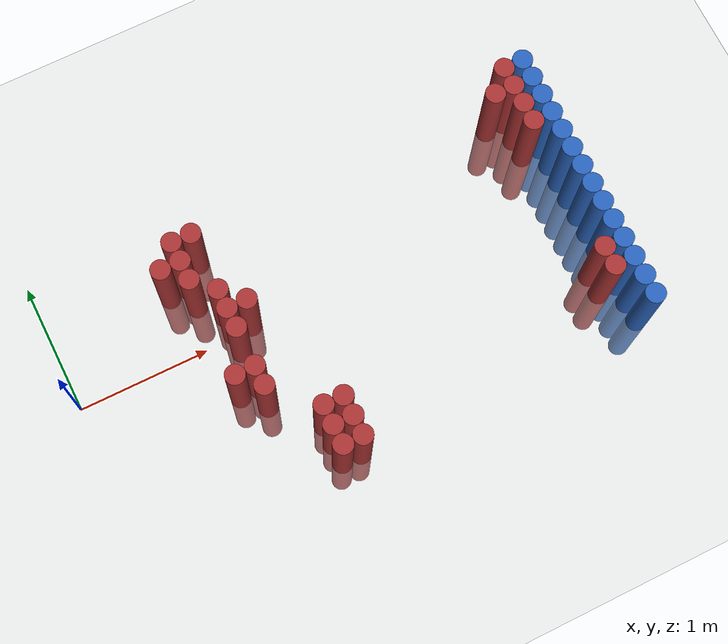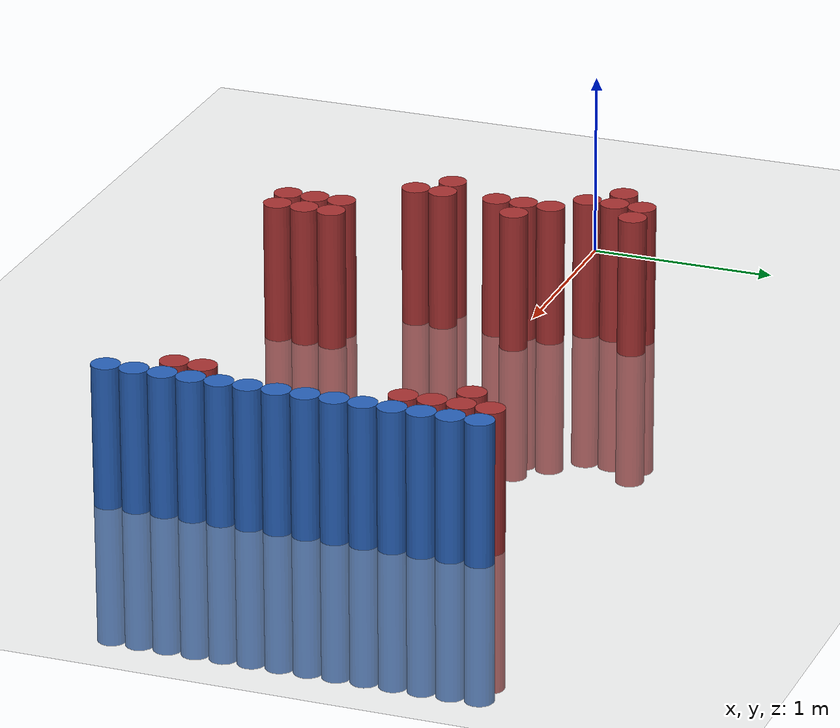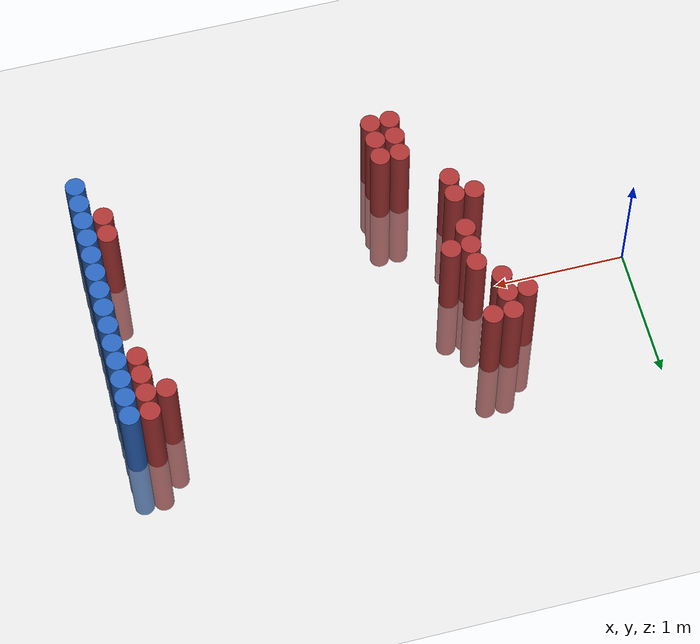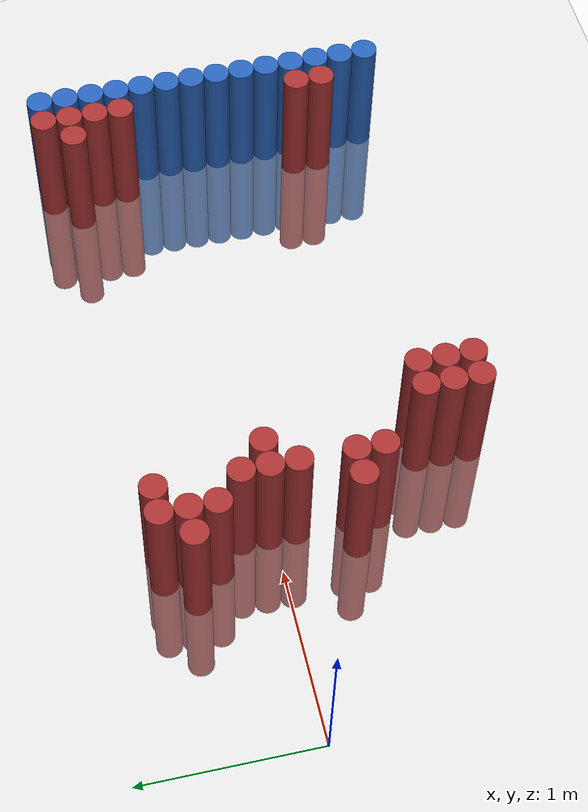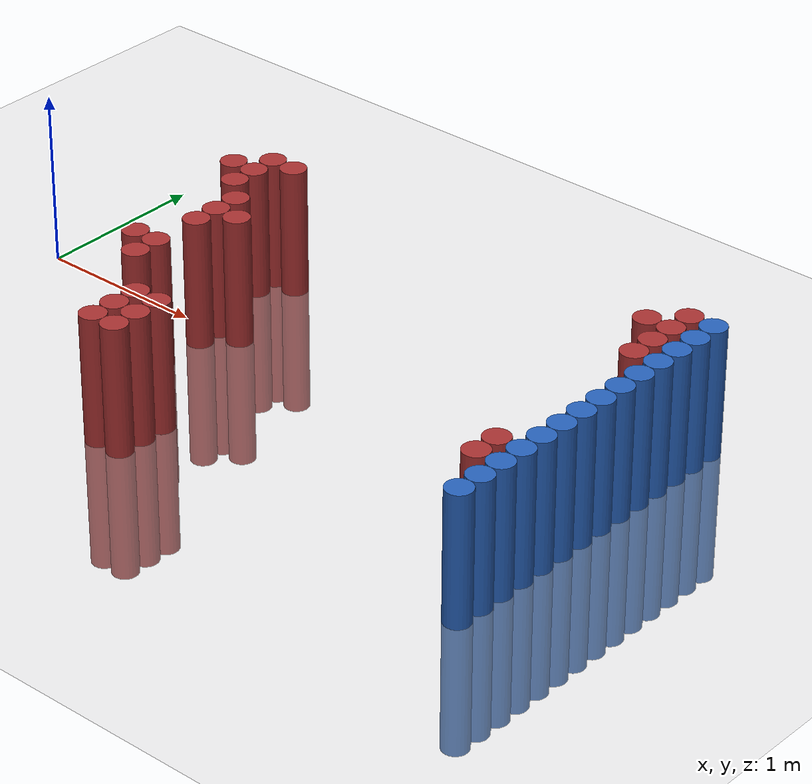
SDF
<sdf version="1.6">
 <world name="default">
  <model name="ground_plane">
   <static>1</static>
   <link name="link">
    <collision name="collision">
     <geometry><plane><normal>0 0 1</normal><size>100 100</size></plane></geometry>
     <surface><friction><ode><mu>100</mu><mu2>50</mu2></ode></friction></surface>
    </collision>
    <visual name="visual">
     <cast_shadows>0</cast_shadows>
     <geometry><plane><normal>0 0 1</normal><size>100 100</size></plane></geometry>
     <material>
      <script><uri>file://media/materials/scripts/gazebo.material</uri><name>Gazebo/Grey</name></script>
     </material>
    </visual>
   </link>
  </model>
  <model name="unit_cylinder_98">
   <static>1</static>
   <pose>3.925000 -1.175000 0.000000 0.000000 0.000000 0.000000</pose>
   <link name="link">
    <inertial>
     <mass>1</mass>
     <inertia><ixx>0.145833</ixx><ixy>0</ixy><ixz>0</ixz><iyy>0.145833</iyy><iyz>0</iyz><izz>0.125</izz></inertia>
    </inertial>
    <collision name="collision">
     <geometry><cylinder><radius>0.075000</radius><length>1.5</length></cylinder></geometry>
    </collision>
    <visual name="visual">
     <geometry><cylinder><radius>0.075000</radius><length>1.5</length></cylinder></geometry>
     <material>
      <ambient>0.152000 0.379000 0.720000 1</ambient>
      <diffuse>0.152000 0.379000 0.720000 1</diffuse>
     </material>
     <material>
      <script><name>Gazebo/Grey</name><uri>file://media/materials/scripts/gazebo.material</uri></script>
     </material>
    </visual>
   </link>
  </model>
  <model name="unit_cylinder_100">
   <static>1</static>
   <pose>3.925000 -1.025000 0.000000 0.000000 0.000000 0.000000</pose>
   <link name="link">
    <inertial>
     <mass>1</mass>
     <inertia><ixx>0.145833</ixx><ixy>0</ixy><ixz>0</ixz><iyy>0.145833</iyy><iyz>0</iyz><izz>0.125</izz></inertia>
    </inertial>
    <collision name="collision">
     <geometry><cylinder><radius>0.075000</radius><length>1.5</length></cylinder></geometry>
    </collision>
    <visual name="visual">
     <geometry><cylinder><radius>0.075000</radius><length>1.5</length></cylinder></geometry>
     <material>
      <ambient>0.152000 0.379000 0.720000 1</ambient>
      <diffuse>0.152000 0.379000 0.720000 1</diffuse>
     </material>
     <material>
      <script><name>Gazebo/Grey</name><uri>file://media/materials/scripts/gazebo.material</uri></script>
     </material>
    </visual>
   </link>
  </model>
  <model name="unit_cylinder_102">
   <static>1</static>
   <pose>3.925000 -0.875000 0.000000 0.000000 0.000000 0.000000</pose>
   <link name="link">
    <inertial>
     <mass>1</mass>
     <inertia><ixx>0.145833</ixx><ixy>0</ixy><ixz>0</ixz><iyy>0.145833</iyy><iyz>0</iyz><izz>0.125</izz></inertia>
    </inertial>
    <collision name="collision">
     <geometry><cylinder><radius>0.075000</radius><length>1.5</length></cylinder></geometry>
    </collision>
    <visual name="visual">
     <geometry><cylinder><radius>0.075000</radius><length>1.5</length></cylinder></geometry>
     <material>
      <ambient>0.152000 0.379000 0.720000 1</ambient>
      <diffuse>0.152000 0.379000 0.720000 1</diffuse>
     </material>
     <material>
      <script><name>Gazebo/Grey</name><uri>file://media/materials/scripts/gazebo.material</uri></script>
     </material>
    </visual>
   </link>
  </model>
  <model name="unit_cylinder_104">
   <static>1</static>
   <pose>3.925000 -0.725000 0.000000 0.000000 0.000000 0.000000</pose>
   <link name="link">
    <inertial>
     <mass>1</mass>
     <inertia><ixx>0.145833</ixx><ixy>0</ixy><ixz>0</ixz><iyy>0.145833</iyy><iyz>0</iyz><izz>0.125</izz></inertia>
    </inertial>
    <collision name="collision">
     <geometry><cylinder><radius>0.075000</radius><length>1.5</length></cylinder></geometry>
    </collision>
    <visual name="visual">
     <geometry><cylinder><radius>0.075000</radius><length>1.5</length></cylinder></geometry>
     <material>
      <ambient>0.152000 0.379000 0.720000 1</ambient>
      <diffuse>0.152000 0.379000 0.720000 1</diffuse>
     </material>
     <material>
      <script><name>Gazebo/Grey</name><uri>file://media/materials/scripts/gazebo.material</uri></script>
     </material>
    </visual>
   </link>
  </model>
  <model name="unit_cylinder_106">
   <static>1</static>
   <pose>3.925000 -0.575000 0.000000 0.000000 0.000000 0.000000</pose>
   <link name="link">
    <inertial>
     <mass>1</mass>
     <inertia><ixx>0.145833</ixx><ixy>0</ixy><ixz>0</ixz><iyy>0.145833</iyy><iyz>0</iyz><izz>0.125</izz></inertia>
    </inertial>
    <collision name="collision">
     <geometry><cylinder><radius>0.075000</radius><length>1.5</length></cylinder></geometry>
    </collision>
    <visual name="visual">
     <geometry><cylinder><radius>0.075000</radius><length>1.5</length></cylinder></geometry>
     <material>
      <ambient>0.152000 0.379000 0.720000 1</ambient>
      <diffuse>0.152000 0.379000 0.720000 1</diffuse>
     </material>
     <material>
      <script><name>Gazebo/Grey</name><uri>file://media/materials/scripts/gazebo.material</uri></script>
     </material>
    </visual>
   </link>
  </model>
  <model name="unit_cylinder_108">
   <static>1</static>
   <pose>3.925000 -0.425000 0.000000 0.000000 0.000000 0.000000</pose>
   <link name="link">
    <inertial>
     <mass>1</mass>
     <inertia><ixx>0.145833</ixx><ixy>0</ixy><ixz>0</ixz><iyy>0.145833</iyy><iyz>0</iyz><izz>0.125</izz></inertia>
    </inertial>
    <collision name="collision">
     <geometry><cylinder><radius>0.075000</radius><length>1.5</length></cylinder></geometry>
    </collision>
    <visual name="visual">
     <geometry><cylinder><radius>0.075000</radius><length>1.5</length></cylinder></geometry>
     <material>
      <ambient>0.152000 0.379000 0.720000 1</ambient>
      <diffuse>0.152000 0.379000 0.720000 1</diffuse>
     </material>
     <material>
      <script><name>Gazebo/Grey</name><uri>file://media/materials/scripts/gazebo.material</uri></script>
     </material>
    </visual>
   </link>
  </model>
  <model name="unit_cylinder_110">
   <static>1</static>
   <pose>3.925000 -0.275000 0.000000 0.000000 0.000000 0.000000</pose>
   <link name="link">
    <inertial>
     <mass>1</mass>
     <inertia><ixx>0.145833</ixx><ixy>0</ixy><ixz>0</ixz><iyy>0.145833</iyy><iyz>0</iyz><izz>0.125</izz></inertia>
    </inertial>
    <collision name="collision">
     <geometry><cylinder><radius>0.075000</radius><length>1.5</length></cylinder></geometry>
    </collision>
    <visual name="visual">
     <geometry><cylinder><radius>0.075000</radius><length>1.5</length></cylinder></geometry>
     <material>
      <ambient>0.152000 0.379000 0.720000 1</ambient>
      <diffuse>0.152000 0.379000 0.720000 1</diffuse>
     </material>
     <material>
      <script><name>Gazebo/Grey</name><uri>file://media/materials/scripts/gazebo.material</uri></script>
     </material>
    </visual>
   </link>
  </model>
  <model name="unit_cylinder_112">
   <static>1</static>
   <pose>3.925000 -0.125000 0.000000 0.000000 0.000000 0.000000</pose>
   <link name="link">
    <inertial>
     <mass>1</mass>
     <inertia><ixx>0.145833</ixx><ixy>0</ixy><ixz>0</ixz><iyy>0.145833</iyy><iyz>0</iyz><izz>0.125</izz></inertia>
    </inertial>
    <collision name="collision">
     <geometry><cylinder><radius>0.075000</radius><length>1.5</length></cylinder></geometry>
    </collision>
    <visual name="visual">
     <geometry><cylinder><radius>0.075000</radius><length>1.5</length></cylinder></geometry>
     <material>
      <ambient>0.152000 0.379000 0.720000 1</ambient>
      <diffuse>0.152000 0.379000 0.720000 1</diffuse>
     </material>
     <material>
      <script><name>Gazebo/Grey</name><uri>file://media/materials/scripts/gazebo.material</uri></script>
     </material>
    </visual>
   </link>
  </model>
  <model name="unit_cylinder_114">
   <static>1</static>
   <pose>3.925000 0.025000 0.000000 0.000000 0.000000 0.000000</pose>
   <link name="link">
    <inertial>
     <mass>1</mass>
     <inertia><ixx>0.145833</ixx><ixy>0</ixy><ixz>0</ixz><iyy>0.145833</iyy><iyz>0</iyz><izz>0.125</izz></inertia>
    </inertial>
    <collision name="collision">
     <geometry><cylinder><radius>0.075000</radius><length>1.5</length></cylinder></geometry>
    </collision>
    <visual name="visual">
     <geometry><cylinder><radius>0.075000</radius><length>1.5</length></cylinder></geometry>
     <material>
      <ambient>0.152000 0.379000 0.720000 1</ambient>
      <diffuse>0.152000 0.379000 0.720000 1</diffuse>
     </material>
     <material>
      <script><name>Gazebo/Grey</name><uri>file://media/materials/scripts/gazebo.material</uri></script>
     </material>
    </visual>
   </link>
  </model>
  <model name="unit_cylinder_116">
   <static>1</static>
   <pose>3.925000 0.175000 0.000000 0.000000 0.000000 0.000000</pose>
   <link name="link">
    <inertial>
     <mass>1</mass>
     <inertia><ixx>0.145833</ixx><ixy>0</ixy><ixz>0</ixz><iyy>0.145833</iyy><iyz>0</iyz><izz>0.125</izz></inertia>
    </inertial>
    <collision name="collision">
     <geometry><cylinder><radius>0.075000</radius><length>1.5</length></cylinder></geometry>
    </collision>
    <visual name="visual">
     <geometry><cylinder><radius>0.075000</radius><length>1.5</length></cylinder></geometry>
     <material>
      <ambient>0.152000 0.379000 0.720000 1</ambient>
      <diffuse>0.152000 0.379000 0.720000 1</diffuse>
     </material>
     <material>
      <script><name>Gazebo/Grey</name><uri>file://media/materials/scripts/gazebo.material</uri></script>
     </material>
    </visual>
   </link>
  </model>
  <model name="unit_cylinder_118">
   <static>1</static>
   <pose>3.925000 0.325000 0.000000 0.000000 0.000000 0.000000</pose>
   <link name="link">
    <inertial>
     <mass>1</mass>
     <inertia><ixx>0.145833</ixx><ixy>0</ixy><ixz>0</ixz><iyy>0.145833</iyy><iyz>0</iyz><izz>0.125</izz></inertia>
    </inertial>
    <collision name="collision">
     <geometry><cylinder><radius>0.075000</radius><length>1.5</length></cylinder></geometry>
    </collision>
    <visual name="visual">
     <geometry><cylinder><radius>0.075000</radius><length>1.5</length></cylinder></geometry>
     <material>
      <ambient>0.152000 0.379000 0.720000 1</ambient>
      <diffuse>0.152000 0.379000 0.720000 1</diffuse>
     </material>
     <material>
      <script><name>Gazebo/Grey</name><uri>file://media/materials/scripts/gazebo.material</uri></script>
     </material>
    </visual>
   </link>
  </model>
  <model name="unit_cylinder_120">
   <static>1</static>
   <pose>3.925000 0.475000 0.000000 0.000000 0.000000 0.000000</pose>
   <link name="link">
    <inertial>
     <mass>1</mass>
     <inertia><ixx>0.145833</ixx><ixy>0</ixy><ixz>0</ixz><iyy>0.145833</iyy><iyz>0</iyz><izz>0.125</izz></inertia>
    </inertial>
    <collision name="collision">
     <geometry><cylinder><radius>0.075000</radius><length>1.5</length></cylinder></geometry>
    </collision>
    <visual name="visual">
     <geometry><cylinder><radius>0.075000</radius><length>1.5</length></cylinder></geometry>
     <material>
      <ambient>0.152000 0.379000 0.720000 1</ambient>
      <diffuse>0.152000 0.379000 0.720000 1</diffuse>
     </material>
     <material>
      <script><name>Gazebo/Grey</name><uri>file://media/materials/scripts/gazebo.material</uri></script>
     </material>
    </visual>
   </link>
  </model>
  <model name="unit_cylinder_122">
   <static>1</static>
   <pose>3.925000 0.625000 0.000000 0.000000 0.000000 0.000000</pose>
   <link name="link">
    <inertial>
     <mass>1</mass>
     <inertia><ixx>0.145833</ixx><ixy>0</ixy><ixz>0</ixz><iyy>0.145833</iyy><iyz>0</iyz><izz>0.125</izz></inertia>
    </inertial>
    <collision name="collision">
     <geometry><cylinder><radius>0.075000</radius><length>1.5</length></cylinder></geometry>
    </collision>
    <visual name="visual">
     <geometry><cylinder><radius>0.075000</radius><length>1.5</length></cylinder></geometry>
     <material>
      <ambient>0.152000 0.379000 0.720000 1</ambient>
      <diffuse>0.152000 0.379000 0.720000 1</diffuse>
     </material>
     <material>
      <script><name>Gazebo/Grey</name><uri>file://media/materials/scripts/gazebo.material</uri></script>
     </material>
    </visual>
   </link>
  </model>
  <model name="unit_cylinder_124">
   <static>1</static>
   <pose>3.925000 0.775000 0.000000 0.000000 0.000000 0.000000</pose>
   <link name="link">
    <inertial>
     <mass>1</mass>
     <inertia><ixx>0.145833</ixx><ixy>0</ixy><ixz>0</ixz><iyy>0.145833</iyy><iyz>0</iyz><izz>0.125</izz></inertia>
    </inertial>
    <collision name="collision">
     <geometry><cylinder><radius>0.075000</radius><length>1.5</length></cylinder></geometry>
    </collision>
    <visual name="visual">
     <geometry><cylinder><radius>0.075000</radius><length>1.5</length></cylinder></geometry>
     <material>
      <ambient>0.152000 0.379000 0.720000 1</ambient>
      <diffuse>0.152000 0.379000 0.720000 1</diffuse>
     </material>
     <material>
      <script><name>Gazebo/Grey</name><uri>file://media/materials/scripts/gazebo.material</uri></script>
     </material>
    </visual>
   </link>
  </model>
  <model name="unit_cylinder_297">
   <static>1</static>
   <pose>0.925000 0.475000 0.000000 0.000000 0.000000 0.000000</pose>
   <link name="link">
    <inertial>
     <mass>1</mass>
     <inertia><ixx>0.145833</ixx><ixy>0</ixy><ixz>0</ixz><iyy>0.145833</iyy><iyz>0</iyz><izz>0.125</izz></inertia>
    </inertial>
    <collision name="collision">
     <geometry><cylinder><radius>0.075000</radius><length>1.5</length></cylinder></geometry>
    </collision>
    <visual name="visual">
     <geometry><cylinder><radius>0.075000</radius><length>1.5</length></cylinder></geometry>
     <material>
      <ambient>0.648000 0.192000 0.192000 1</ambient>
      <diffuse>0.648000 0.192000 0.192000 1</diffuse>
     </material>
     <material>
      <script><name>Gazebo/Grey</name><uri>file://media/materials/scripts/gazebo.material</uri></script>
     </material>
    </visual>
   </link>
  </model>
  <model name="unit_cylinder_298">
   <static>1</static>
   <pose>1.075000 -0.425000 0.000000 0.000000 0.000000 0.000000</pose>
   <link name="link">
    <inertial>
     <mass>1</mass>
     <inertia><ixx>0.145833</ixx><ixy>0</ixy><ixz>0</ixz><iyy>0.145833</iyy><iyz>0</iyz><izz>0.125</izz></inertia>
    </inertial>
    <collision name="collision">
     <geometry><cylinder><radius>0.075000</radius><length>1.5</length></cylinder></geometry>
    </collision>
    <visual name="visual">
     <geometry><cylinder><radius>0.075000</radius><length>1.5</length></cylinder></geometry>
     <material>
      <ambient>0.648000 0.192000 0.192000 1</ambient>
      <diffuse>0.648000 0.192000 0.192000 1</diffuse>
     </material>
     <material>
      <script><name>Gazebo/Grey</name><uri>file://media/materials/scripts/gazebo.material</uri></script>
     </material>
    </visual>
   </link>
  </model>
  <model name="unit_cylinder_299">
   <static>1</static>
   <pose>1.075000 0.325000 0.000000 0.000000 0.000000 0.000000</pose>
   <link name="link">
    <inertial>
     <mass>1</mass>
     <inertia><ixx>0.145833</ixx><ixy>0</ixy><ixz>0</ixz><iyy>0.145833</iyy><iyz>0</iyz><izz>0.125</izz></inertia>
    </inertial>
    <collision name="collision">
     <geometry><cylinder><radius>0.075000</radius><length>1.5</length></cylinder></geometry>
    </collision>
    <visual name="visual">
     <geometry><cylinder><radius>0.075000</radius><length>1.5</length></cylinder></geometry>
     <material>
      <ambient>0.648000 0.192000 0.192000 1</ambient>
      <diffuse>0.648000 0.192000 0.192000 1</diffuse>
     </material>
     <material>
      <script><name>Gazebo/Grey</name><uri>file://media/materials/scripts/gazebo.material</uri></script>
     </material>
    </visual>
   </link>
  </model>
  <model name="unit_cylinder_300">
   <static>1</static>
   <pose>1.075000 0.475000 0.000000 0.000000 0.000000 0.000000</pose>
   <link name="link">
    <inertial>
     <mass>1</mass>
     <inertia><ixx>0.145833</ixx><ixy>0</ixy><ixz>0</ixz><iyy>0.145833</iyy><iyz>0</iyz><izz>0.125</izz></inertia>
    </inertial>
    <collision name="collision">
     <geometry><cylinder><radius>0.075000</radius><length>1.5</length></cylinder></geometry>
    </collision>
    <visual name="visual">
     <geometry><cylinder><radius>0.075000</radius><length>1.5</length></cylinder></geometry>
     <material>
      <ambient>0.648000 0.192000 0.192000 1</ambient>
      <diffuse>0.648000 0.192000 0.192000 1</diffuse>
     </material>
     <material>
      <script><name>Gazebo/Grey</name><uri>file://media/materials/scripts/gazebo.material</uri></script>
     </material>
    </visual>
   </link>
  </model>
  <model name="unit_cylinder_301">
   <static>1</static>
   <pose>1.075000 0.625000 0.000000 0.000000 0.000000 0.000000</pose>
   <link name="link">
    <inertial>
     <mass>1</mass>
     <inertia><ixx>0.145833</ixx><ixy>0</ixy><ixz>0</ixz><iyy>0.145833</iyy><iyz>0</iyz><izz>0.125</izz></inertia>
    </inertial>
    <collision name="collision">
     <geometry><cylinder><radius>0.075000</radius><length>1.5</length></cylinder></geometry>
    </collision>
    <visual name="visual">
     <geometry><cylinder><radius>0.075000</radius><length>1.5</length></cylinder></geometry>
     <material>
      <ambient>0.648000 0.192000 0.192000 1</ambient>
      <diffuse>0.648000 0.192000 0.192000 1</diffuse>
     </material>
     <material>
      <script><name>Gazebo/Grey</name><uri>file://media/materials/scripts/gazebo.material</uri></script>
     </material>
    </visual>
   </link>
  </model>
  <model name="unit_cylinder_302">
   <static>1</static>
   <pose>1.225000 -0.575000 0.000000 0.000000 0.000000 0.000000</pose>
   <link name="link">
    <inertial>
     <mass>1</mass>
     <inertia><ixx>0.145833</ixx><ixy>0</ixy><ixz>0</ixz><iyy>0.145833</iyy><iyz>0</iyz><izz>0.125</izz></inertia>
    </inertial>
    <collision name="collision">
     <geometry><cylinder><radius>0.075000</radius><length>1.5</length></cylinder></geometry>
    </collision>
    <visual name="visual">
     <geometry><cylinder><radius>0.075000</radius><length>1.5</length></cylinder></geometry>
     <material>
      <ambient>0.648000 0.192000 0.192000 1</ambient>
      <diffuse>0.648000 0.192000 0.192000 1</diffuse>
     </material>
     <material>
      <script><name>Gazebo/Grey</name><uri>file://media/materials/scripts/gazebo.material</uri></script>
     </material>
    </visual>
   </link>
  </model>
  <model name="unit_cylinder_303">
   <static>1</static>
   <pose>1.225000 -0.425000 0.000000 0.000000 0.000000 0.000000</pose>
   <link name="link">
    <inertial>
     <mass>1</mass>
     <inertia><ixx>0.145833</ixx><ixy>0</ixy><ixz>0</ixz><iyy>0.145833</iyy><iyz>0</iyz><izz>0.125</izz></inertia>
    </inertial>
    <collision name="collision">
     <geometry><cylinder><radius>0.075000</radius><length>1.5</length></cylinder></geometry>
    </collision>
    <visual name="visual">
     <geometry><cylinder><radius>0.075000</radius><length>1.5</length></cylinder></geometry>
     <material>
      <ambient>0.648000 0.192000 0.192000 1</ambient>
      <diffuse>0.648000 0.192000 0.192000 1</diffuse>
     </material>
     <material>
      <script><name>Gazebo/Grey</name><uri>file://media/materials/scripts/gazebo.material</uri></script>
     </material>
    </visual>
   </link>
  </model>
  <model name="unit_cylinder_304">
   <static>1</static>
   <pose>1.225000 -0.125000 0.000000 0.000000 0.000000 0.000000</pose>
   <link name="link">
    <inertial>
     <mass>1</mass>
     <inertia><ixx>0.145833</ixx><ixy>0</ixy><ixz>0</ixz><iyy>0.145833</iyy><iyz>0</iyz><izz>0.125</izz></inertia>
    </inertial>
    <collision name="collision">
     <geometry><cylinder><radius>0.075000</radius><length>1.5</length></cylinder></geometry>
    </collision>
    <visual name="visual">
     <geometry><cylinder><radius>0.075000</radius><length>1.5</length></cylinder></geometry>
     <material>
      <ambient>0.648000 0.192000 0.192000 1</ambient>
      <diffuse>0.648000 0.192000 0.192000 1</diffuse>
     </material>
     <material>
      <script><name>Gazebo/Grey</name><uri>file://media/materials/scripts/gazebo.material</uri></script>
     </material>
    </visual>
   </link>
  </model>
  <model name="unit_cylinder_305">
   <static>1</static>
   <pose>1.225000 0.025000 0.000000 0.000000 0.000000 0.000000</pose>
   <link name="link">
    <inertial>
     <mass>1</mass>
     <inertia><ixx>0.145833</ixx><ixy>0</ixy><ixz>0</ixz><iyy>0.145833</iyy><iyz>0</iyz><izz>0.125</izz></inertia>
    </inertial>
    <collision name="collision">
     <geometry><cylinder><radius>0.075000</radius><length>1.5</length></cylinder></geometry>
    </collision>
    <visual name="visual">
     <geometry><cylinder><radius>0.075000</radius><length>1.5</length></cylinder></geometry>
     <material>
      <ambient>0.648000 0.192000 0.192000 1</ambient>
      <diffuse>0.648000 0.192000 0.192000 1</diffuse>
     </material>
     <material>
      <script><name>Gazebo/Grey</name><uri>file://media/materials/scripts/gazebo.material</uri></script>
     </material>
    </visual>
   </link>
  </model>
  <model name="unit_cylinder_306">
   <static>1</static>
   <pose>1.225000 0.175000 0.000000 0.000000 0.000000 0.000000</pose>
   <link name="link">
    <inertial>
     <mass>1</mass>
     <inertia><ixx>0.145833</ixx><ixy>0</ixy><ixz>0</ixz><iyy>0.145833</iyy><iyz>0</iyz><izz>0.125</izz></inertia>
    </inertial>
    <collision name="collision">
     <geometry><cylinder><radius>0.075000</radius><length>1.5</length></cylinder></geometry>
    </collision>
    <visual name="visual">
     <geometry><cylinder><radius>0.075000</radius><length>1.5</length></cylinder></geometry>
     <material>
      <ambient>0.648000 0.192000 0.192000 1</ambient>
      <diffuse>0.648000 0.192000 0.192000 1</diffuse>
     </material>
     <material>
      <script><name>Gazebo/Grey</name><uri>file://media/materials/scripts/gazebo.material</uri></script>
     </material>
    </visual>
   </link>
  </model>
  <model name="unit_cylinder_307">
   <static>1</static>
   <pose>1.225000 0.625000 0.000000 0.000000 0.000000 0.000000</pose>
   <link name="link">
    <inertial>
     <mass>1</mass>
     <inertia><ixx>0.145833</ixx><ixy>0</ixy><ixz>0</ixz><iyy>0.145833</iyy><iyz>0</iyz><izz>0.125</izz></inertia>
    </inertial>
    <collision name="collision">
     <geometry><cylinder><radius>0.075000</radius><length>1.5</length></cylinder></geometry>
    </collision>
    <visual name="visual">
     <geometry><cylinder><radius>0.075000</radius><length>1.5</length></cylinder></geometry>
     <material>
      <ambient>0.648000 0.192000 0.192000 1</ambient>
      <diffuse>0.648000 0.192000 0.192000 1</diffuse>
     </material>
     <material>
      <script><name>Gazebo/Grey</name><uri>file://media/materials/scripts/gazebo.material</uri></script>
     </material>
    </visual>
   </link>
  </model>
  <model name="unit_cylinder_309">
   <static>1</static>
   <pose>1.375000 0.025000 0.000000 0.000000 0.000000 0.000000</pose>
   <link name="link">
    <inertial>
     <mass>1</mass>
     <inertia><ixx>0.145833</ixx><ixy>0</ixy><ixz>0</ixz><iyy>0.145833</iyy><iyz>0</iyz><izz>0.125</izz></inertia>
    </inertial>
    <collision name="collision">
     <geometry><cylinder><radius>0.075000</radius><length>1.5</length></cylinder></geometry>
    </collision>
    <visual name="visual">
     <geometry><cylinder><radius>0.075000</radius><length>1.5</length></cylinder></geometry>
     <material>
      <ambient>0.648000 0.192000 0.192000 1</ambient>
      <diffuse>0.648000 0.192000 0.192000 1</diffuse>
     </material>
     <material>
      <script><name>Gazebo/Grey</name><uri>file://media/materials/scripts/gazebo.material</uri></script>
     </material>
    </visual>
   </link>
  </model>
  <model name="unit_cylinder_310">
   <static>1</static>
   <pose>1.525000 -1.175000 0.000000 0.000000 0.000000 0.000000</pose>
   <link name="link">
    <inertial>
     <mass>1</mass>
     <inertia><ixx>0.145833</ixx><ixy>0</ixy><ixz>0</ixz><iyy>0.145833</iyy><iyz>0</iyz><izz>0.125</izz></inertia>
    </inertial>
    <collision name="collision">
     <geometry><cylinder><radius>0.075000</radius><length>1.5</length></cylinder></geometry>
    </collision>
    <visual name="visual">
     <geometry><cylinder><radius>0.075000</radius><length>1.5</length></cylinder></geometry>
     <material>
      <ambient>0.648000 0.192000 0.192000 1</ambient>
      <diffuse>0.648000 0.192000 0.192000 1</diffuse>
     </material>
     <material>
      <script><name>Gazebo/Grey</name><uri>file://media/materials/scripts/gazebo.material</uri></script>
     </material>
    </visual>
   </link>
  </model>
  <model name="unit_cylinder_311">
   <static>1</static>
   <pose>1.525000 -1.025000 0.000000 0.000000 0.000000 0.000000</pose>
   <link name="link">
    <inertial>
     <mass>1</mass>
     <inertia><ixx>0.145833</ixx><ixy>0</ixy><ixz>0</ixz><iyy>0.145833</iyy><iyz>0</iyz><izz>0.125</izz></inertia>
    </inertial>
    <collision name="collision">
     <geometry><cylinder><radius>0.075000</radius><length>1.5</length></cylinder></geometry>
    </collision>
    <visual name="visual">
     <geometry><cylinder><radius>0.075000</radius><length>1.5</length></cylinder></geometry>
     <material>
      <ambient>0.648000 0.192000 0.192000 1</ambient>
      <diffuse>0.648000 0.192000 0.192000 1</diffuse>
     </material>
     <material>
      <script><name>Gazebo/Grey</name><uri>file://media/materials/scripts/gazebo.material</uri></script>
     </material>
    </visual>
   </link>
  </model>
  <model name="unit_cylinder_312">
   <static>1</static>
   <pose>1.525000 -0.875000 0.000000 0.000000 0.000000 0.000000</pose>
   <link name="link">
    <inertial>
     <mass>1</mass>
     <inertia><ixx>0.145833</ixx><ixy>0</ixy><ixz>0</ixz><iyy>0.145833</iyy><iyz>0</iyz><izz>0.125</izz></inertia>
    </inertial>
    <collision name="collision">
     <geometry><cylinder><radius>0.075000</radius><length>1.5</length></cylinder></geometry>
    </collision>
    <visual name="visual">
     <geometry><cylinder><radius>0.075000</radius><length>1.5</length></cylinder></geometry>
     <material>
      <ambient>0.648000 0.192000 0.192000 1</ambient>
      <diffuse>0.648000 0.192000 0.192000 1</diffuse>
     </material>
     <material>
      <script><name>Gazebo/Grey</name><uri>file://media/materials/scripts/gazebo.material</uri></script>
     </material>
    </visual>
   </link>
  </model>
  <model name="unit_cylinder_314">
   <static>1</static>
   <pose>1.675000 -1.175000 0.000000 0.000000 0.000000 0.000000</pose>
   <link name="link">
    <inertial>
     <mass>1</mass>
     <inertia><ixx>0.145833</ixx><ixy>0</ixy><ixz>0</ixz><iyy>0.145833</iyy><iyz>0</iyz><izz>0.125</izz></inertia>
    </inertial>
    <collision name="collision">
     <geometry><cylinder><radius>0.075000</radius><length>1.5</length></cylinder></geometry>
    </collision>
    <visual name="visual">
     <geometry><cylinder><radius>0.075000</radius><length>1.5</length></cylinder></geometry>
     <material>
      <ambient>0.648000 0.192000 0.192000 1</ambient>
      <diffuse>0.648000 0.192000 0.192000 1</diffuse>
     </material>
     <material>
      <script><name>Gazebo/Grey</name><uri>file://media/materials/scripts/gazebo.material</uri></script>
     </material>
    </visual>
   </link>
  </model>
  <model name="unit_cylinder_315">
   <static>1</static>
   <pose>1.675000 -1.025000 0.000000 0.000000 0.000000 0.000000</pose>
   <link name="link">
    <inertial>
     <mass>1</mass>
     <inertia><ixx>0.145833</ixx><ixy>0</ixy><ixz>0</ixz><iyy>0.145833</iyy><iyz>0</iyz><izz>0.125</izz></inertia>
    </inertial>
    <collision name="collision">
     <geometry><cylinder><radius>0.075000</radius><length>1.5</length></cylinder></geometry>
    </collision>
    <visual name="visual">
     <geometry><cylinder><radius>0.075000</radius><length>1.5</length></cylinder></geometry>
     <material>
      <ambient>0.648000 0.192000 0.192000 1</ambient>
      <diffuse>0.648000 0.192000 0.192000 1</diffuse>
     </material>
     <material>
      <script><name>Gazebo/Grey</name><uri>file://media/materials/scripts/gazebo.material</uri></script>
     </material>
    </visual>
   </link>
  </model>
  <model name="unit_cylinder_316">
   <static>1</static>
   <pose>1.675000 -0.875000 0.000000 0.000000 0.000000 0.000000</pose>
   <link name="link">
    <inertial>
     <mass>1</mass>
     <inertia><ixx>0.145833</ixx><ixy>0</ixy><ixz>0</ixz><iyy>0.145833</iyy><iyz>0</iyz><izz>0.125</izz></inertia>
    </inertial>
    <collision name="collision">
     <geometry><cylinder><radius>0.075000</radius><length>1.5</length></cylinder></geometry>
    </collision>
    <visual name="visual">
     <geometry><cylinder><radius>0.075000</radius><length>1.5</length></cylinder></geometry>
     <material>
      <ambient>0.648000 0.192000 0.192000 1</ambient>
      <diffuse>0.648000 0.192000 0.192000 1</diffuse>
     </material>
     <material>
      <script><name>Gazebo/Grey</name><uri>file://media/materials/scripts/gazebo.material</uri></script>
     </material>
    </visual>
   </link>
  </model>
  <model name="unit_cylinder_336">
   <static>1</static>
   <pose>3.625000 0.625000 0.000000 0.000000 0.000000 0.000000</pose>
   <link name="link">
    <inertial>
     <mass>1</mass>
     <inertia><ixx>0.145833</ixx><ixy>0</ixy><ixz>0</ixz><iyy>0.145833</iyy><iyz>0</iyz><izz>0.125</izz></inertia>
    </inertial>
    <collision name="collision">
     <geometry><cylinder><radius>0.075000</radius><length>1.5</length></cylinder></geometry>
    </collision>
    <visual name="visual">
     <geometry><cylinder><radius>0.075000</radius><length>1.5</length></cylinder></geometry>
     <material>
      <ambient>0.648000 0.192000 0.192000 1</ambient>
      <diffuse>0.648000 0.192000 0.192000 1</diffuse>
     </material>
     <material>
      <script><name>Gazebo/Grey</name><uri>file://media/materials/scripts/gazebo.material</uri></script>
     </material>
    </visual>
   </link>
  </model>
  <model name="unit_cylinder_342">
   <static>1</static>
   <pose>3.775000 -0.875000 0.000000 0.000000 0.000000 0.000000</pose>
   <link name="link">
    <inertial>
     <mass>1</mass>
     <inertia><ixx>0.145833</ixx><ixy>0</ixy><ixz>0</ixz><iyy>0.145833</iyy><iyz>0</iyz><izz>0.125</izz></inertia>
    </inertial>
    <collision name="collision">
     <geometry><cylinder><radius>0.075000</radius><length>1.5</length></cylinder></geometry>
    </collision>
    <visual name="visual">
     <geometry><cylinder><radius>0.075000</radius><length>1.5</length></cylinder></geometry>
     <material>
      <ambient>0.648000 0.192000 0.192000 1</ambient>
      <diffuse>0.648000 0.192000 0.192000 1</diffuse>
     </material>
     <material>
      <script><name>Gazebo/Grey</name><uri>file://media/materials/scripts/gazebo.material</uri></script>
     </material>
    </visual>
   </link>
  </model>
  <model name="unit_cylinder_343">
   <static>1</static>
   <pose>3.775000 -0.725000 0.000000 0.000000 0.000000 0.000000</pose>
   <link name="link">
    <inertial>
     <mass>1</mass>
     <inertia><ixx>0.145833</ixx><ixy>0</ixy><ixz>0</ixz><iyy>0.145833</iyy><iyz>0</iyz><izz>0.125</izz></inertia>
    </inertial>
    <collision name="collision">
     <geometry><cylinder><radius>0.075000</radius><length>1.5</length></cylinder></geometry>
    </collision>
    <visual name="visual">
     <geometry><cylinder><radius>0.075000</radius><length>1.5</length></cylinder></geometry>
     <material>
      <ambient>0.648000 0.192000 0.192000 1</ambient>
      <diffuse>0.648000 0.192000 0.192000 1</diffuse>
     </material>
     <material>
      <script><name>Gazebo/Grey</name><uri>file://media/materials/scripts/gazebo.material</uri></script>
     </material>
    </visual>
   </link>
  </model>
  <model name="unit_cylinder_344">
   <static>1</static>
   <pose>3.775000 0.325000 0.000000 0.000000 0.000000 0.000000</pose>
   <link name="link">
    <inertial>
     <mass>1</mass>
     <inertia><ixx>0.145833</ixx><ixy>0</ixy><ixz>0</ixz><iyy>0.145833</iyy><iyz>0</iyz><izz>0.125</izz></inertia>
    </inertial>
    <collision name="collision">
     <geometry><cylinder><radius>0.075000</radius><length>1.5</length></cylinder></geometry>
    </collision>
    <visual name="visual">
     <geometry><cylinder><radius>0.075000</radius><length>1.5</length></cylinder></geometry>
     <material>
      <ambient>0.648000 0.192000 0.192000 1</ambient>
      <diffuse>0.648000 0.192000 0.192000 1</diffuse>
     </material>
     <material>
      <script><name>Gazebo/Grey</name><uri>file://media/materials/scripts/gazebo.material</uri></script>
     </material>
    </visual>
   </link>
  </model>
  <model name="unit_cylinder_345">
   <static>1</static>
   <pose>3.775000 0.475000 0.000000 0.000000 0.000000 0.000000</pose>
   <link name="link">
    <inertial>
     <mass>1</mass>
     <inertia><ixx>0.145833</ixx><ixy>0</ixy><ixz>0</ixz><iyy>0.145833</iyy><iyz>0</iyz><izz>0.125</izz></inertia>
    </inertial>
    <collision name="collision">
     <geometry><cylinder><radius>0.075000</radius><length>1.5</length></cylinder></geometry>
    </collision>
    <visual name="visual">
     <geometry><cylinder><radius>0.075000</radius><length>1.5</length></cylinder></geometry>
     <material>
      <ambient>0.648000 0.192000 0.192000 1</ambient>
      <diffuse>0.648000 0.192000 0.192000 1</diffuse>
     </material>
     <material>
      <script><name>Gazebo/Grey</name><uri>file://media/materials/scripts/gazebo.material</uri></script>
     </material>
    </visual>
   </link>
  </model>
  <model name="unit_cylinder_346">
   <static>1</static>
   <pose>3.775000 0.625000 0.000000 0.000000 0.000000 0.000000</pose>
   <link name="link">
    <inertial>
     <mass>1</mass>
     <inertia><ixx>0.145833</ixx><ixy>0</ixy><ixz>0</ixz><iyy>0.145833</iyy><iyz>0</iyz><izz>0.125</izz></inertia>
    </inertial>
    <collision name="collision">
     <geometry><cylinder><radius>0.075000</radius><length>1.5</length></cylinder></geometry>
    </collision>
    <visual name="visual">
     <geometry><cylinder><radius>0.075000</radius><length>1.5</length></cylinder></geometry>
     <material>
      <ambient>0.648000 0.192000 0.192000 1</ambient>
      <diffuse>0.648000 0.192000 0.192000 1</diffuse>
     </material>
     <material>
      <script><name>Gazebo/Grey</name><uri>file://media/materials/scripts/gazebo.material</uri></script>
     </material>
    </visual>
   </link>
  </model>
  <model name="unit_cylinder_347">
   <static>1</static>
   <pose>3.775000 0.775000 0.000000 0.000000 0.000000 0.000000</pose>
   <link name="link">
    <inertial>
     <mass>1</mass>
     <inertia><ixx>0.145833</ixx><ixy>0</ixy><ixz>0</ixz><iyy>0.145833</iyy><iyz>0</iyz><izz>0.125</izz></inertia>
    </inertial>
    <collision name="collision">
     <geometry><cylinder><radius>0.075000</radius><length>1.5</length></cylinder></geometry>
    </collision>
    <visual name="visual">
     <geometry><cylinder><radius>0.075000</radius><length>1.5</length></cylinder></geometry>
     <material>
      <ambient>0.648000 0.192000 0.192000 1</ambient>
      <diffuse>0.648000 0.192000 0.192000 1</diffuse>
     </material>
     <material>
      <script><name>Gazebo/Grey</name><uri>file://media/materials/scripts/gazebo.material</uri></script>
     </material>
    </visual>
   </link>
  </model>
  <model name="unit_cylinder_370">
   <static>1</static>
   <pose>3.925000 -1.175000 0.000000 0.000000 0.000000 0.000000</pose>
   <link name="link">
    <inertial>
     <mass>1</mass>
     <inertia><ixx>0.145833</ixx><ixy>0</ixy><ixz>0</ixz><iyy>0.145833</iyy><iyz>0</iyz><izz>0.125</izz></inertia>
    </inertial>
    <collision name="collision">
     <geometry><cylinder><radius>0.075000</radius><length>1.5</length></cylinder></geometry>
    </collision>
    <visual name="visual">
     <geometry><cylinder><radius>0.075000</radius><length>1.5</length></cylinder></geometry>
     <material>
      <ambient>0.152000 0.379000 0.720000 1</ambient>
      <diffuse>0.152000 0.379000 0.720000 1</diffuse>
     </material>
     <material>
      <script><name>Gazebo/Grey</name><uri>file://media/materials/scripts/gazebo.material</uri></script>
     </material>
    </visual>
   </link>
  </model>
  <model name="unit_cylinder_371">
   <static>1</static>
   <pose>3.925000 -1.025000 0.000000 0.000000 0.000000 0.000000</pose>
   <link name="link">
    <inertial>
     <mass>1</mass>
     <inertia><ixx>0.145833</ixx><ixy>0</ixy><ixz>0</ixz><iyy>0.145833</iyy><iyz>0</iyz><izz>0.125</izz></inertia>
    </inertial>
    <collision name="collision">
     <geometry><cylinder><radius>0.075000</radius><length>1.5</length></cylinder></geometry>
    </collision>
    <visual name="visual">
     <geometry><cylinder><radius>0.075000</radius><length>1.5</length></cylinder></geometry>
     <material>
      <ambient>0.152000 0.379000 0.720000 1</ambient>
      <diffuse>0.152000 0.379000 0.720000 1</diffuse>
     </material>
     <material>
      <script><name>Gazebo/Grey</name><uri>file://media/materials/scripts/gazebo.material</uri></script>
     </material>
    </visual>
   </link>
  </model>
  <model name="unit_cylinder_372">
   <static>1</static>
   <pose>3.925000 -0.875000 0.000000 0.000000 0.000000 0.000000</pose>
   <link name="link">
    <inertial>
     <mass>1</mass>
     <inertia><ixx>0.145833</ixx><ixy>0</ixy><ixz>0</ixz><iyy>0.145833</iyy><iyz>0</iyz><izz>0.125</izz></inertia>
    </inertial>
    <collision name="collision">
     <geometry><cylinder><radius>0.075000</radius><length>1.5</length></cylinder></geometry>
    </collision>
    <visual name="visual">
     <geometry><cylinder><radius>0.075000</radius><length>1.5</length></cylinder></geometry>
     <material>
      <ambient>0.152000 0.379000 0.720000 1</ambient>
      <diffuse>0.152000 0.379000 0.720000 1</diffuse>
     </material>
     <material>
      <script><name>Gazebo/Grey</name><uri>file://media/materials/scripts/gazebo.material</uri></script>
     </material>
    </visual>
   </link>
  </model>
  <model name="unit_cylinder_373">
   <static>1</static>
   <pose>3.925000 -0.725000 0.000000 0.000000 0.000000 0.000000</pose>
   <link name="link">
    <inertial>
     <mass>1</mass>
     <inertia><ixx>0.145833</ixx><ixy>0</ixy><ixz>0</ixz><iyy>0.145833</iyy><iyz>0</iyz><izz>0.125</izz></inertia>
    </inertial>
    <collision name="collision">
     <geometry><cylinder><radius>0.075000</radius><length>1.5</length></cylinder></geometry>
    </collision>
    <visual name="visual">
     <geometry><cylinder><radius>0.075000</radius><length>1.5</length></cylinder></geometry>
     <material>
      <ambient>0.152000 0.379000 0.720000 1</ambient>
      <diffuse>0.152000 0.379000 0.720000 1</diffuse>
     </material>
     <material>
      <script><name>Gazebo/Grey</name><uri>file://media/materials/scripts/gazebo.material</uri></script>
     </material>
    </visual>
   </link>
  </model>
  <model name="unit_cylinder_374">
   <static>1</static>
   <pose>3.925000 -0.575000 0.000000 0.000000 0.000000 0.000000</pose>
   <link name="link">
    <inertial>
     <mass>1</mass>
     <inertia><ixx>0.145833</ixx><ixy>0</ixy><ixz>0</ixz><iyy>0.145833</iyy><iyz>0</iyz><izz>0.125</izz></inertia>
    </inertial>
    <collision name="collision">
     <geometry><cylinder><radius>0.075000</radius><length>1.5</length></cylinder></geometry>
    </collision>
    <visual name="visual">
     <geometry><cylinder><radius>0.075000</radius><length>1.5</length></cylinder></geometry>
     <material>
      <ambient>0.152000 0.379000 0.720000 1</ambient>
      <diffuse>0.152000 0.379000 0.720000 1</diffuse>
     </material>
     <material>
      <script><name>Gazebo/Grey</name><uri>file://media/materials/scripts/gazebo.material</uri></script>
     </material>
    </visual>
   </link>
  </model>
  <model name="unit_cylinder_375">
   <static>1</static>
   <pose>3.925000 -0.425000 0.000000 0.000000 0.000000 0.000000</pose>
   <link name="link">
    <inertial>
     <mass>1</mass>
     <inertia><ixx>0.145833</ixx><ixy>0</ixy><ixz>0</ixz><iyy>0.145833</iyy><iyz>0</iyz><izz>0.125</izz></inertia>
    </inertial>
    <collision name="collision">
     <geometry><cylinder><radius>0.075000</radius><length>1.5</length></cylinder></geometry>
    </collision>
    <visual name="visual">
     <geometry><cylinder><radius>0.075000</radius><length>1.5</length></cylinder></geometry>
     <material>
      <ambient>0.152000 0.379000 0.720000 1</ambient>
      <diffuse>0.152000 0.379000 0.720000 1</diffuse>
     </material>
     <material>
      <script><name>Gazebo/Grey</name><uri>file://media/materials/scripts/gazebo.material</uri></script>
     </material>
    </visual>
   </link>
  </model>
  <model name="unit_cylinder_376">
   <static>1</static>
   <pose>3.925000 -0.275000 0.000000 0.000000 0.000000 0.000000</pose>
   <link name="link">
    <inertial>
     <mass>1</mass>
     <inertia><ixx>0.145833</ixx><ixy>0</ixy><ixz>0</ixz><iyy>0.145833</iyy><iyz>0</iyz><izz>0.125</izz></inertia>
    </inertial>
    <collision name="collision">
     <geometry><cylinder><radius>0.075000</radius><length>1.5</length></cylinder></geometry>
    </collision>
    <visual name="visual">
     <geometry><cylinder><radius>0.075000</radius><length>1.5</length></cylinder></geometry>
     <material>
      <ambient>0.152000 0.379000 0.720000 1</ambient>
      <diffuse>0.152000 0.379000 0.720000 1</diffuse>
     </material>
     <material>
      <script><name>Gazebo/Grey</name><uri>file://media/materials/scripts/gazebo.material</uri></script>
     </material>
    </visual>
   </link>
  </model>
  <model name="unit_cylinder_377">
   <static>1</static>
   <pose>3.925000 -0.125000 0.000000 0.000000 0.000000 0.000000</pose>
   <link name="link">
    <inertial>
     <mass>1</mass>
     <inertia><ixx>0.145833</ixx><ixy>0</ixy><ixz>0</ixz><iyy>0.145833</iyy><iyz>0</iyz><izz>0.125</izz></inertia>
    </inertial>
    <collision name="collision">
     <geometry><cylinder><radius>0.075000</radius><length>1.5</length></cylinder></geometry>
    </collision>
    <visual name="visual">
     <geometry><cylinder><radius>0.075000</radius><length>1.5</length></cylinder></geometry>
     <material>
      <ambient>0.152000 0.379000 0.720000 1</ambient>
      <diffuse>0.152000 0.379000 0.720000 1</diffuse>
     </material>
     <material>
      <script><name>Gazebo/Grey</name><uri>file://media/materials/scripts/gazebo.material</uri></script>
     </material>
    </visual>
   </link>
  </model>
  <model name="unit_cylinder_378">
   <static>1</static>
   <pose>3.925000 0.025000 0.000000 0.000000 0.000000 0.000000</pose>
   <link name="link">
    <inertial>
     <mass>1</mass>
     <inertia><ixx>0.145833</ixx><ixy>0</ixy><ixz>0</ixz><iyy>0.145833</iyy><iyz>0</iyz><izz>0.125</izz></inertia>
    </inertial>
    <collision name="collision">
     <geometry><cylinder><radius>0.075000</radius><length>1.5</length></cylinder></geometry>
    </collision>
    <visual name="visual">
     <geometry><cylinder><radius>0.075000</radius><length>1.5</length></cylinder></geometry>
     <material>
      <ambient>0.152000 0.379000 0.720000 1</ambient>
      <diffuse>0.152000 0.379000 0.720000 1</diffuse>
     </material>
     <material>
      <script><name>Gazebo/Grey</name><uri>file://media/materials/scripts/gazebo.material</uri></script>
     </material>
    </visual>
   </link>
  </model>
  <model name="unit_cylinder_379">
   <static>1</static>
   <pose>3.925000 0.175000 0.000000 0.000000 0.000000 0.000000</pose>
   <link name="link">
    <inertial>
     <mass>1</mass>
     <inertia><ixx>0.145833</ixx><ixy>0</ixy><ixz>0</ixz><iyy>0.145833</iyy><iyz>0</iyz><izz>0.125</izz></inertia>
    </inertial>
    <collision name="collision">
     <geometry><cylinder><radius>0.075000</radius><length>1.5</length></cylinder></geometry>
    </collision>
    <visual name="visual">
     <geometry><cylinder><radius>0.075000</radius><length>1.5</length></cylinder></geometry>
     <material>
      <ambient>0.152000 0.379000 0.720000 1</ambient>
      <diffuse>0.152000 0.379000 0.720000 1</diffuse>
     </material>
     <material>
      <script><name>Gazebo/Grey</name><uri>file://media/materials/scripts/gazebo.material</uri></script>
     </material>
    </visual>
   </link>
  </model>
  <model name="unit_cylinder_380">
   <static>1</static>
   <pose>3.925000 0.325000 0.000000 0.000000 0.000000 0.000000</pose>
   <link name="link">
    <inertial>
     <mass>1</mass>
     <inertia><ixx>0.145833</ixx><ixy>0</ixy><ixz>0</ixz><iyy>0.145833</iyy><iyz>0</iyz><izz>0.125</izz></inertia>
    </inertial>
    <collision name="collision">
     <geometry><cylinder><radius>0.075000</radius><length>1.5</length></cylinder></geometry>
    </collision>
    <visual name="visual">
     <geometry><cylinder><radius>0.075000</radius><length>1.5</length></cylinder></geometry>
     <material>
      <ambient>0.152000 0.379000 0.720000 1</ambient>
      <diffuse>0.152000 0.379000 0.720000 1</diffuse>
     </material>
     <material>
      <script><name>Gazebo/Grey</name><uri>file://media/materials/scripts/gazebo.material</uri></script>
     </material>
    </visual>
   </link>
  </model>
  <model name="unit_cylinder_381">
   <static>1</static>
   <pose>3.925000 0.475000 0.000000 0.000000 0.000000 0.000000</pose>
   <link name="link">
    <inertial>
     <mass>1</mass>
     <inertia><ixx>0.145833</ixx><ixy>0</ixy><ixz>0</ixz><iyy>0.145833</iyy><iyz>0</iyz><izz>0.125</izz></inertia>
    </inertial>
    <collision name="collision">
     <geometry><cylinder><radius>0.075000</radius><length>1.5</length></cylinder></geometry>
    </collision>
    <visual name="visual">
     <geometry><cylinder><radius>0.075000</radius><length>1.5</length></cylinder></geometry>
     <material>
      <ambient>0.152000 0.379000 0.720000 1</ambient>
      <diffuse>0.152000 0.379000 0.720000 1</diffuse>
     </material>
     <material>
      <script><name>Gazebo/Grey</name><uri>file://media/materials/scripts/gazebo.material</uri></script>
     </material>
    </visual>
   </link>
  </model>
  <model name="unit_cylinder_382">
   <static>1</static>
   <pose>3.925000 0.625000 0.000000 0.000000 0.000000 0.000000</pose>
   <link name="link">
    <inertial>
     <mass>1</mass>
     <inertia><ixx>0.145833</ixx><ixy>0</ixy><ixz>0</ixz><iyy>0.145833</iyy><iyz>0</iyz><izz>0.125</izz></inertia>
    </inertial>
    <collision name="collision">
     <geometry><cylinder><radius>0.075000</radius><length>1.5</length></cylinder></geometry>
    </collision>
    <visual name="visual">
     <geometry><cylinder><radius>0.075000</radius><length>1.5</length></cylinder></geometry>
     <material>
      <ambient>0.152000 0.379000 0.720000 1</ambient>
      <diffuse>0.152000 0.379000 0.720000 1</diffuse>
     </material>
     <material>
      <script><name>Gazebo/Grey</name><uri>file://media/materials/scripts/gazebo.material</uri></script>
     </material>
    </visual>
   </link>
  </model>
 </world>
</sdf>
